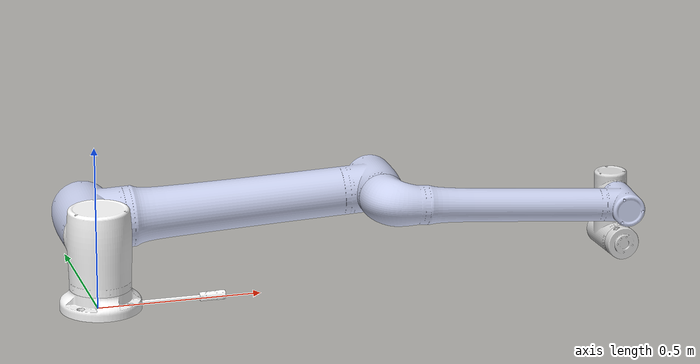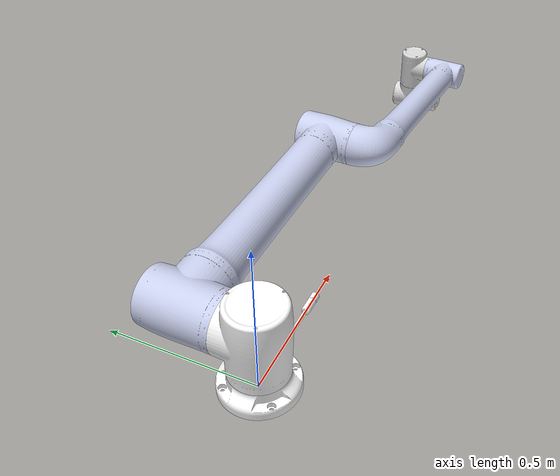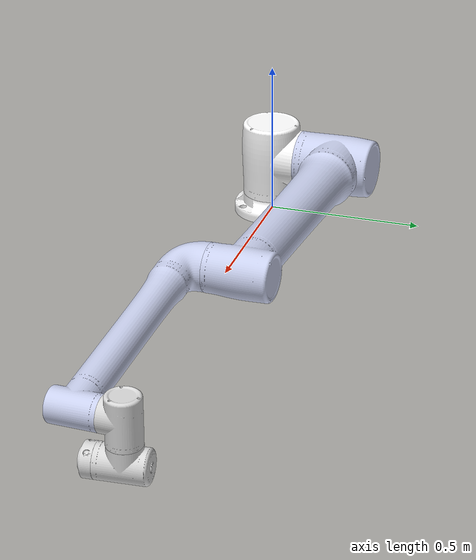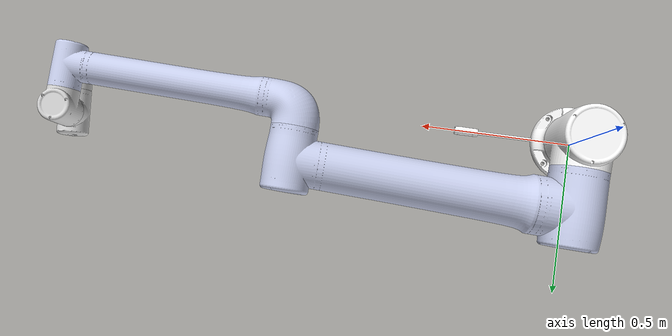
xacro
<?xml version="1.0"?>
<robot xmlns:xacro="http://www.ros.org/wiki/xacro" name="jaka_a20">
    <xacro:arg name="initial_positions_file" default="initial_positions.yaml" />
    <xacro:arg name="use_gazebo" default="false"/>
    <xacro:arg name="use_rviz_sim" default="false"/>

    <!-- Import jaka_a20 urdf file -->
    <xacro:include filename="$(find jaka_description)/urdf/jaka_a20.urdf" />

    <!-- Import control_xacro -->
    <xacro:include filename="jaka_a20.ros2_control.xacro" />

    <xacro:jaka_a20_ros2_control name="jaka_a20_hardware" initial_positions_file="$(arg initial_positions_file)" use_gazebo="$(arg use_gazebo)" use_rviz_sim="$(arg use_rviz_sim)" />

</robot>

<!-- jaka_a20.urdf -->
<robot
  name="jaka_a20">

  <link name="world" />

  <link
    name="base_link">
    <inertial>
      <origin
        xyz="0.012963 -0.00022478 0.033142"
        rpy="0 0 0" />
      <mass
        value="1.8939" />
      <inertia
        ixx="0.0071184"
        ixy="-1.1808E-07"
        ixz="-2.5841E-05"
        iyy="0.0080241"
        iyz="2.4522E-06"
        izz="0.014003" />
    </inertial>
    <visual>
      <origin
        xyz="0 0 0"
        rpy="0 0 0" />
      <geometry>
        <mesh
          filename="package://jaka_description/meshes/jaka_a20_meshes/base_link.STL" />
      </geometry>
      <material
        name="">
        <color
          rgba="1 1 1 1" />
      </material>
    </visual>
    <collision>
      <origin
        xyz="0 0 0"
        rpy="0 0 0" />
      <geometry>
        <mesh
          filename="package://jaka_description/meshes/jaka_a20_meshes/base_link.STL" />
      </geometry>
    </collision>
  </link>

  <!-- JOINT -->
  <joint name="fixed" type="fixed">
     <origin xyz="0.005 0 0" rpy="0 0 0" />
     <parent link="world"/>
     <child link="base_link"/>
  </joint>

  <link
    name="Link_01">
    <inertial>
      <origin
        xyz="0.00025332 0.0056107 -0.0066183"
        rpy="0 0 0" />
      <mass
        value="7.5341" />
      <inertia
        ixx="0.055306"
        ixy="-7.2162E-05"
        ixz="-8.747E-06"
        iyy="0.053718"
        iyz="-0.00019586"
        izz="0.037383" />
    </inertial>
    <visual>
      <origin
        xyz="0 0 0"
        rpy="0 0 0" />
      <geometry>
        <mesh
          filename="package://jaka_description/meshes/jaka_a20_meshes/Link_01.STL" />
      </geometry>
      <material
        name="">
        <color
          rgba="1 1 1 1" />
      </material>
    </visual>
    <collision>
      <origin
        xyz="0 0 0"
        rpy="0 0 0" />
      <geometry>
        <mesh
          filename="package://jaka_description/meshes/jaka_a20_meshes/Link_01.STL" />
      </geometry>
    </collision>
  </link>
  <joint
    name="joint_1"
    type="revolute">
    <origin
      xyz="0.0044104 -0.00027834 0.1965"
      rpy="0 0 0" />
    <parent
      link="base_link" />
    <child
      link="Link_01" />
    <axis
      xyz="0 0 -1" />
    <limit
      lower="-6.28"
      upper="6.28"
      effort="3000"
      velocity="2.09" />
  </joint>
  <link
    name="Link_02">
    <inertial>
      <origin
        xyz="0.3859 0.018155 -0.21272"
        rpy="0 0 0" />
      <mass
        value="24.858" />
      <inertia
        ixx="0.11483"
        ixy="-0.028404"
        ixz="-0.02541"
        iyy="0.70094"
        iyz="-0.0012807"
        izz="0.67749" />
    </inertial>
    <visual>
      <origin
        xyz="0 0 0"
        rpy="0 0 0" />
      <geometry>
        <mesh
          filename="package://jaka_description/meshes/jaka_a20_meshes/Link_02.STL" />
      </geometry>
      <material
        name="">
        <color
          rgba="0.79216 0.81961 0.93333 1" />
      </material>
    </visual>
    <collision>
      <origin
        xyz="0 0 0"
        rpy="0 0 0" />
      <geometry>
        <mesh
          filename="package://jaka_description/meshes/jaka_a20_meshes/Link_02.STL" />
      </geometry>
    </collision>
  </link>
  <joint
    name="joint_2"
    type="revolute">
    <origin
      xyz="0 0 0"
      rpy="1.5708 0 0" />
    <parent
      link="Link_01" />
    <child
      link="Link_02" />
    <axis
      xyz="-0.045307 0 0.99897" />
    <limit
      lower="-1.48"
      upper="4.62"
      effort="9000"
      velocity="2.09" />
  </joint>
  <link
    name="Link_03">
    <inertial>
      <origin
        xyz="0.34304 -0.025528 0.00025329"
        rpy="0 0 0" />
      <mass
        value="8.3474" />
      <inertia
        ixx="0.018986"
        ixy="0.024956"
        ixz="-0.026917"
        iyy="0.35133"
        iyz="0.0020151"
        izz="0.34952" />
    </inertial>
    <visual>
      <origin
        xyz="0 0 0"
        rpy="0 0 0" />
      <geometry>
        <mesh
          filename="package://jaka_description/meshes/jaka_a20_meshes/Link_03.STL" />
      </geometry>
      <material
        name="">
        <color
          rgba="0.79216 0.81961 0.93333 1" />
      </material>
    </visual>
    <collision>
      <origin
        xyz="0 0 0"
        rpy="0 0 0" />
      <geometry>
        <mesh
          filename="package://jaka_description/meshes/jaka_a20_meshes/Link_03.STL" />
      </geometry>
    </collision>
  </link>
  <joint
    name="joint_3"
    type="revolute">
    <origin
      xyz="0.89688 0.043276 0"
      rpy="0 0 0" />
    <parent
      link="Link_02" />
    <child
      link="Link_03" />
    <axis
      xyz="-0.045307 0 0.99897" />
    <limit
      lower="-3.05"
      upper="3.05"
      effort="9000"
      velocity="2.09" />
  </joint>
  <link
    name="Link_04">
    <inertial>
      <origin
        xyz="-0.00017225 -0.0057264 0.0052328"
        rpy="0 0 0" />
      <mass
        value="1.2892" />
      <inertia
        ixx="0.0031169"
        ixy="1.5467E-05"
        ixz="8.6693E-06"
        iyy="0.0019092"
        iyz="-3.7984E-05"
        izz="0.0029358" />
    </inertial>
    <visual>
      <origin
        xyz="0 0 0"
        rpy="0 0 0" />
      <geometry>
        <mesh
          filename="package://jaka_description/meshes/jaka_a20_meshes/Link_04.STL" />
      </geometry>
      <material
        name="">
        <color
          rgba="0.84706 0.84706 0.84706 1" />
      </material>
    </visual>
    <collision>
      <origin
        xyz="0 0 0"
        rpy="0 0 0" />
      <geometry>
        <mesh
          filename="package://jaka_description/meshes/jaka_a20_meshes/Link_04.STL" />
      </geometry>
    </collision>
  </link>
  <joint
    name="joint_4"
    type="revolute">
    <origin
      xyz="0.74837 -0.055302 -0.11393"
      rpy="0 0 0" />
    <parent
      link="Link_03" />
    <child
      link="Link_04" />
    <axis
      xyz="-0.045307 0 0.99897" />
    <limit
      lower="-1.48"
      upper="4.62"
      effort="6000"
      velocity="3.84" />
  </joint>
  <link
    name="Link_05">
    <inertial>
      <origin
        xyz="0.00017701 0.0035616 -0.0051224"
        rpy="0 0 0" />
      <mass
        value="1.33" />
      <inertia
        ixx="0.0033369"
        ixy="-9.1554E-05"
        ixz="-3.519E-06"
        iyy="0.0019594"
        iyz="-2.2603E-05"
        izz="0.0031636" />
    </inertial>
    <visual>
      <origin
        xyz="0 0 0"
        rpy="0 0 0" />
      <geometry>
        <mesh
          filename="package://jaka_description/meshes/jaka_a20_meshes/Link_05.STL" />
      </geometry>
      <material
        name="">
        <color
          rgba="0.84706 0.84706 0.84706 1" />
      </material>
    </visual>
    <collision>
      <origin
        xyz="0 0 0"
        rpy="0 0 0" />
      <geometry>
        <mesh
          filename="package://jaka_description/meshes/jaka_a20_meshes/Link_05.STL" />
      </geometry>
    </collision>
  </link>
  <joint
    name="joint_5"
    type="revolute">
    <origin
      xyz="0.0015718 -0.13849 7.1288E-05"
      rpy="1.5708 0 0" />
    <parent
      link="Link_04" />
    <child
      link="Link_05" />
    <axis
      xyz="0.011349 0.00051471 0.99994" />
    <limit
      lower="-6.28"
      upper="6.28"
      effort="6000"
      velocity="3.84" />
  </joint>
  <link
    name="Link_06">
    <inertial>
      <origin
        xyz="-0.0018179 0.00011188 -0.024102"
        rpy="0 0 0" />
      <mass
        value="0.27866" />
      <inertia
        ixx="0.00019757"
        ixy="1.033E-06"
        ixz="8.9709E-06"
        iyy="0.00020227"
        iyz="6.4121E-08"
        izz="0.00033498" />
    </inertial>
    <visual>
      <origin
        xyz="0 0 0"
        rpy="0 0 0" />
      <geometry>
        <mesh
          filename="package://jaka_description/meshes/jaka_a20_meshes/Link_06.STL" />
      </geometry>
      <material
        name="">
        <color
          rgba="0.84706 0.84706 0.84706 1" />
      </material>
    </visual>
    <collision>
      <origin
        xyz="0 0 0"
        rpy="0 0 0" />
      <geometry>
        <mesh
          filename="package://jaka_description/meshes/jaka_a20_meshes/Link_06.STL" />
      </geometry>
    </collision>
  </link>
  <joint
    name="joint_6"
    type="revolute">
    <origin
      xyz="0.0081481 0.12022 0.00014266"
      rpy="-1.5708 0 0" />
    <parent
      link="Link_05" />
    <child
      link="Link_06" />
    <axis
      xyz="0.065828 0.0012607 0.99783" />
    <limit
      lower="-6.28"
      upper="6.28"
      effort="2000"
      velocity="3.84" />
  </joint>

  <transmission name="trans_joint_1">
    <type>transmission_interface/SimpleTransmission</type>
    <joint name="joint_1">
      <hardwareInterface>hardware_interface/PositionJointInterface</hardwareInterface>
    </joint>
    <actuator name="joint_1_motor">
      <hardwareInterface>hardware_interface/PositionJointInterface</hardwareInterface>
      <mechanicalReduction>1</mechanicalReduction>
    </actuator>
  </transmission>
  <transmission name="trans_joint_2">
    <type>transmission_interface/SimpleTransmission</type>
    <joint name="joint_2">
      <hardwareInterface>hardware_interface/PositionJointInterface</hardwareInterface>
    </joint>
    <actuator name="joint_2_motor">
      <hardwareInterface>hardware_interface/PositionJointInterface</hardwareInterface>
      <mechanicalReduction>1</mechanicalReduction>
    </actuator>
  </transmission>
  <transmission name="trans_joint_3">
    <type>transmission_interface/SimpleTransmission</type>
    <joint name="joint_3">
      <hardwareInterface>hardware_interface/PositionJointInterface</hardwareInterface>
    </joint>
    <actuator name="joint_3_motor">
      <hardwareInterface>hardware_interface/PositionJointInterface</hardwareInterface>
      <mechanicalReduction>1</mechanicalReduction>
    </actuator>
  </transmission>
  <transmission name="trans_joint_4">
    <type>transmission_interface/SimpleTransmission</type>
    <joint name="joint_4">
      <hardwareInterface>hardware_interface/PositionJointInterface</hardwareInterface>
    </joint>
    <actuator name="joint_4_motor">
      <hardwareInterface>hardware_interface/PositionJointInterface</hardwareInterface>
      <mechanicalReduction>1</mechanicalReduction>
    </actuator>
  </transmission>
  <transmission name="trans_joint_5">
    <type>transmission_interface/SimpleTransmission</type>
    <joint name="joint_5">
      <hardwareInterface>hardware_interface/PositionJointInterface</hardwareInterface>
    </joint>
    <actuator name="joint_5_motor">
      <hardwareInterface>hardware_interface/PositionJointInterface</hardwareInterface>
      <mechanicalReduction>1</mechanicalReduction>
    </actuator>
  </transmission>
  <transmission name="trans_joint_6">
    <type>transmission_interface/SimpleTransmission</type>
    <joint name="joint_6">
      <hardwareInterface>hardware_interface/PositionJointInterface</hardwareInterface>
    </joint>
    <actuator name="joint_6_motor">
      <hardwareInterface>hardware_interface/PositionJointInterface</hardwareInterface>
      <mechanicalReduction>1</mechanicalReduction>
    </actuator>
  </transmission>
  <gazebo>
    <plugin name="ign_ros2_control::IgnitionROS2ControlPlugin" filename="libign_ros2_control-system.so">
      <parameters>$(find jaka_a20_moveit_config)/config/ros2_controllers.yaml</parameters>
      <robotNamespace>/</robotNamespace>
    </plugin>
  </gazebo>
</robot>
